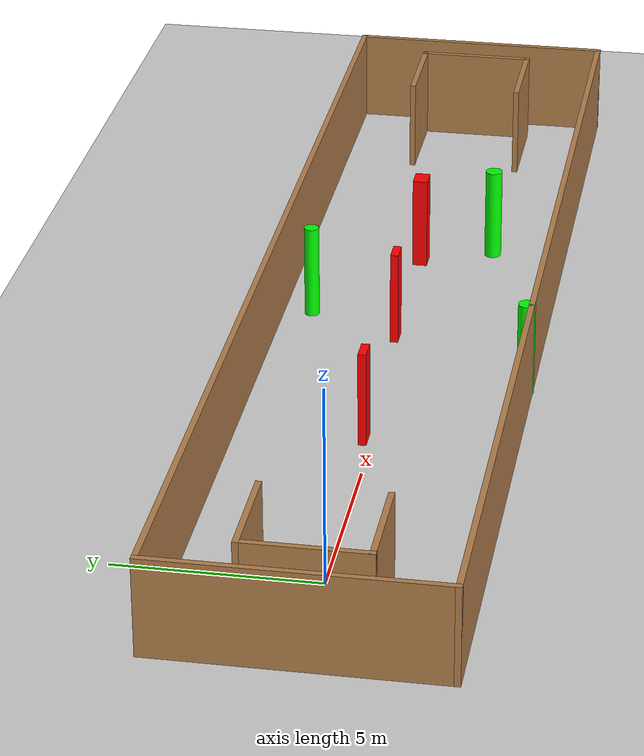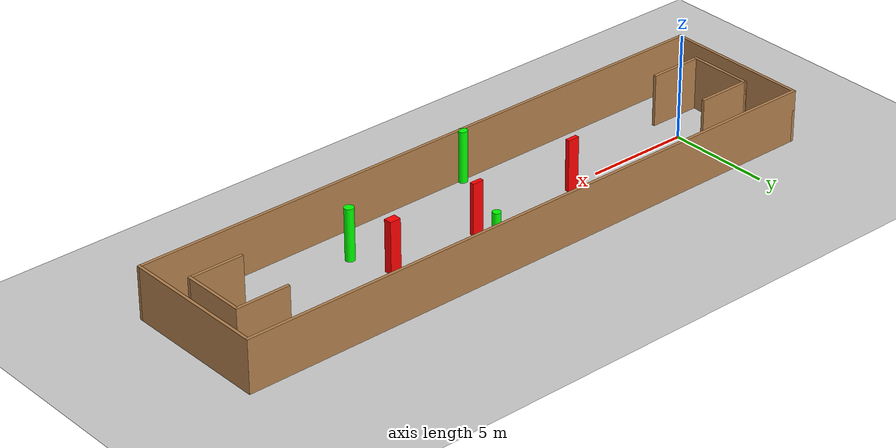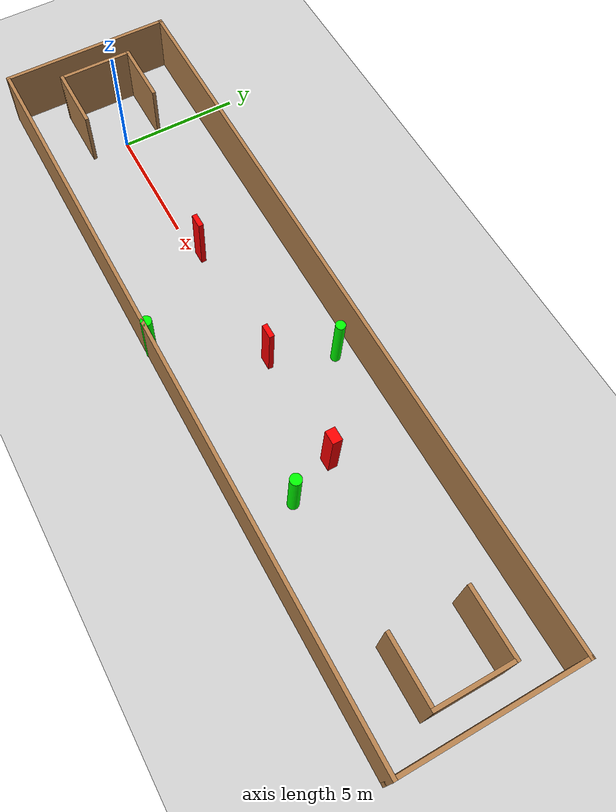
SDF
<sdf version="1.7">
 <world name="default">
  <light name="sun" type="directional">
   <pose>0 0 10 0 -0 0</pose>
   <diffuse>0.8 0.8 0.8 1</diffuse>
   <specular>0.2 0.2 0.2 1</specular>
   <attenuation>
    <range>1000</range>
    <constant>0.9</constant>
    <linear>0.01</linear>
    <quadratic>0.001</quadratic>
   </attenuation>
   <direction>-0.5 0.1 -0.9</direction>
   <spot><inner_angle>0</inner_angle><outer_angle>0</outer_angle><falloff>0</falloff></spot>
  </light>
  <model name="ground_plane">
   <static>1</static>
   <link name="link">
    <collision name="collision">
     <geometry><plane><normal>0 0 1</normal><size>100 100</size></plane></geometry>
     <surface>
      <contact><collide_bitmask>65535</collide_bitmask></contact>
      <friction><ode><mu>100</mu><mu2>50</mu2></ode></friction>
     </surface>
    </collision>
    <visual name="visual">
     <cast_shadows>0</cast_shadows>
     <geometry><plane><normal>0 0 1</normal><size>100 100</size></plane></geometry>
     <material>
      <script><uri>file://media/materials/scripts/gazebo.material</uri><name>Gazebo/Grey</name></script>
     </material>
    </visual>
   </link>
  </model>
  <gravity>0 0 -9.8</gravity>
  <magnetic_field>6e-06 2.3e-05 -4.2e-05</magnetic_field>
  <atmosphere type="adiabatic"/>
  <physics type="ode">
   <max_step_size>0.001</max_step_size>
   <real_time_factor>1</real_time_factor>
   <real_time_update_rate>1000</real_time_update_rate>
  </physics>
  <scene><ambient>0.4 0.4 0.4 1</ambient><background>0.7 0.7 0.7 1</background><shadows>1</shadows></scene>
  <spherical_coordinates>
   <surface_model>EARTH_WGS84</surface_model>
   <latitude_deg>0</latitude_deg>
   <longitude_deg>0</longitude_deg>
   <elevation>0</elevation>
   <heading_deg>0</heading_deg>
  </spherical_coordinates>
  <model name="my_base_walls">
   <link name="Wall_0">
    <collision name="Wall_0_Collision">
     <geometry><box><size>7.15 0.15 2.5</size></box></geometry>
     <pose>0 0 1.25 0 -0 0</pose>
    </collision>
    <visual name="Wall_0_Visual">
     <pose>0 0 1.25 0 -0 0</pose>
     <geometry><box><size>7.15 0.15 2.5</size></box></geometry>
     <material>
      <script><uri>file://media/materials/scripts/gazebo.material</uri><name>Gazebo/Wood</name></script>
      <ambient>1 1 1 1</ambient>
     </material>
     <meta><layer>0</layer></meta>
    </visual>
    <pose>-15 0 0 0 -0 1.5708</pose>
   </link>
   <link name="Wall_10">
    <collision name="Wall_10_Collision">
     <geometry><box><size>2.65 0.15 2.5</size></box></geometry>
     <pose>0 0 1.25 0 -0 0</pose>
    </collision>
    <visual name="Wall_10_Visual">
     <pose>0 0 1.25 0 -0 0</pose>
     <geometry><box><size>2.65 0.15 2.5</size></box></geometry>
     <material>
      <script><uri>file://media/materials/scripts/gazebo.material</uri><name>Gazebo/Wood</name></script>
      <ambient>1 1 1 1</ambient>
     </material>
     <meta><layer>0</layer></meta>
    </visual>
    <pose>-12.75 -1.5 0 0 -0 0</pose>
   </link>
   <link name="Wall_12">
    <collision name="Wall_12_Collision">
     <geometry><box><size>2.65 0.15 2.5</size></box></geometry>
     <pose>0 0 1.25 0 -0 0</pose>
    </collision>
    <visual name="Wall_12_Visual">
     <pose>0 0 1.25 0 -0 0</pose>
     <geometry><box><size>2.65 0.15 2.5</size></box></geometry>
     <material>
      <script><uri>file://media/materials/scripts/gazebo.material</uri><name>Gazebo/Wood</name></script>
      <ambient>1 1 1 1</ambient>
     </material>
     <meta><layer>0</layer></meta>
    </visual>
    <pose>-12.75 1.5 0 0 -0 0</pose>
   </link>
   <link name="Wall_14">
    <collision name="Wall_14_Collision">
     <geometry><box><size>3.15 0.15 2.5</size></box></geometry>
     <pose>0 0 1.25 0 -0 0</pose>
    </collision>
    <visual name="Wall_14_Visual">
     <pose>0 0 1.25 0 -0 0</pose>
     <geometry><box><size>3.15 0.15 2.5</size></box></geometry>
     <material>
      <script><uri>file://media/materials/scripts/gazebo.material</uri><name>Gazebo/Wood</name></script>
      <ambient>1 1 1 1</ambient>
     </material>
     <meta><layer>0</layer></meta>
    </visual>
    <pose>14 0 0 0 -0 -1.5708</pose>
   </link>
   <link name="Wall_15">
    <collision name="Wall_15_Collision">
     <geometry><box><size>2.65 0.15 2.5</size></box></geometry>
     <pose>0 0 1.25 0 -0 0</pose>
    </collision>
    <visual name="Wall_15_Visual">
     <pose>0 0 1.25 0 -0 0</pose>
     <geometry><box><size>2.65 0.15 2.5</size></box></geometry>
     <material>
      <script><uri>file://media/materials/scripts/gazebo.material</uri><name>Gazebo/Wood</name></script>
      <ambient>1 1 1 1</ambient>
     </material>
     <meta><layer>0</layer></meta>
    </visual>
    <pose>12.75 -1.5 0 0 -0 3.14159</pose>
   </link>
   <link name="Wall_17">
    <collision name="Wall_17_Collision">
     <geometry><box><size>2.65 0.15 2.5</size></box></geometry>
     <pose>0 0 1.25 0 -0 0</pose>
    </collision>
    <visual name="Wall_17_Visual">
     <pose>0 0 1.25 0 -0 0</pose>
     <geometry><box><size>2.65 0.15 2.5</size></box></geometry>
     <material>
      <script><uri>file://media/materials/scripts/gazebo.material</uri><name>Gazebo/Wood</name></script>
      <ambient>1 1 1 1</ambient>
     </material>
     <meta><layer>0</layer></meta>
    </visual>
    <pose>12.75 1.5 0 0 -0 3.14159</pose>
   </link>
   <link name="Wall_2">
    <collision name="Wall_2_Collision">
     <geometry><box><size>30.15 0.15 2.5</size></box></geometry>
     <pose>0 0 1.25 0 -0 0</pose>
    </collision>
    <visual name="Wall_2_Visual">
     <pose>0 0 1.25 0 -0 0</pose>
     <geometry><box><size>30.15 0.15 2.5</size></box></geometry>
     <material>
      <script><uri>file://media/materials/scripts/gazebo.material</uri><name>Gazebo/Wood</name></script>
      <ambient>1 1 1 1</ambient>
     </material>
     <meta><layer>0</layer></meta>
    </visual>
    <pose>-0 -3.5 0 0 -0 0</pose>
   </link>
   <link name="Wall_4">
    <collision name="Wall_4_Collision">
     <geometry><box><size>30.15 0.15 2.5</size></box></geometry>
     <pose>0 0 1.25 0 -0 0</pose>
    </collision>
    <visual name="Wall_4_Visual">
     <pose>0 0 1.25 0 -0 0</pose>
     <geometry><box><size>30.15 0.15 2.5</size></box></geometry>
     <material>
      <script><uri>file://media/materials/scripts/gazebo.material</uri><name>Gazebo/Wood</name></script>
      <ambient>1 1 1 1</ambient>
     </material>
     <meta><layer>0</layer></meta>
    </visual>
    <pose>-0 3.5 0 0 -0 0</pose>
   </link>
   <link name="Wall_6">
    <collision name="Wall_6_Collision">
     <geometry><box><size>7.15 0.15 2.5</size></box></geometry>
     <pose>0 0 1.25 0 -0 0</pose>
    </collision>
    <visual name="Wall_6_Visual">
     <pose>0 0 1.25 0 -0 0</pose>
     <geometry><box><size>7.15 0.15 2.5</size></box></geometry>
     <material>
      <script><uri>file://media/materials/scripts/gazebo.material</uri><name>Gazebo/Wood</name></script>
      <ambient>1 1 1 1</ambient>
     </material>
     <meta><layer>0</layer></meta>
    </visual>
    <pose>15 0 0 0 -0 -1.5708</pose>
   </link>
   <link name="Wall_9">
    <collision name="Wall_9_Collision">
     <geometry><box><size>3.15 0.15 2.5</size></box></geometry>
     <pose>0 0 1.25 0 -0 0</pose>
    </collision>
    <visual name="Wall_9_Visual">
     <pose>0 0 1.25 0 -0 0</pose>
     <geometry><box><size>3.15 0.15 2.5</size></box></geometry>
     <material>
      <script><uri>file://media/materials/scripts/gazebo.material</uri><name>Gazebo/Wood</name></script>
      <ambient>1 1 1 1</ambient>
     </material>
     <meta><layer>0</layer></meta>
    </visual>
    <pose>-14 0 0 0 -0 -1.5708</pose>
   </link>
   <static>1</static>
   <pose>11.5 0 0 0 -0 0</pose>
  </model>
  <model name="cylinder1">
   <static>1</static>
   <link name="link">
    <inertial>
     <mass>1</mass>
     <inertia><ixx>0.5</ixx><ixy>0</ixy><ixz>0</ixz><iyy>0.5</iyy><iyz>0</iyz><izz>1</izz></inertia>
    </inertial>
    <collision name="collision">
     <geometry><cylinder><radius>0.19280674545329157</radius><length>2.5</length></cylinder></geometry>
    </collision>
    <visual name="visual">
     <geometry><cylinder><radius>0.19280674545329157</radius><length>2.5</length></cylinder></geometry>
     <material>
      <ambient>0 1 0 1</ambient>
      <diffuse>0 1 0 1</diffuse>
      <specular>0.1 0.1 0.1 1</specular>
      <emissive>0 0 0 0</emissive>
     </material>
    </visual>
   </link>
   <pose>13.123720381449717 2.684597378500613 1.25 0 0 0</pose>
  </model>
  <model name="cylinder2">
   <static>1</static>
   <link name="link">
    <inertial>
     <mass>1</mass>
     <inertia><ixx>0.5</ixx><ixy>0</ixy><ixz>0</ixz><iyy>0.5</iyy><iyz>0</iyz><izz>1</izz></inertia>
    </inertial>
    <collision name="collision">
     <geometry><cylinder><radius>0.21905518431112875</radius><length>2.5</length></cylinder></geometry>
    </collision>
    <visual name="visual">
     <geometry><cylinder><radius>0.21905518431112875</radius><length>2.5</length></cylinder></geometry>
     <material>
      <ambient>0 1 0 1</ambient>
      <diffuse>0 1 0 1</diffuse>
      <specular>0.1 0.1 0.1 1</specular>
      <emissive>0 0 0 0</emissive>
     </material>
    </visual>
   </link>
   <pose>9.682462497312125 -3.3753528819148224 1.25 0 0 0</pose>
  </model>
  <model name="cylinder3">
   <static>1</static>
   <link name="link">
    <inertial>
     <mass>1</mass>
     <inertia><ixx>0.5</ixx><ixy>0</ixy><ixz>0</ixz><iyy>0.5</iyy><iyz>0</iyz><izz>1</izz></inertia>
    </inertial>
    <collision name="collision">
     <geometry><cylinder><radius>0.22338001453278192</radius><length>2.5</length></cylinder></geometry>
    </collision>
    <visual name="visual">
     <geometry><cylinder><radius>0.22338001453278192</radius><length>2.5</length></cylinder></geometry>
     <material>
      <ambient>0 1 0 1</ambient>
      <diffuse>0 1 0 1</diffuse>
      <specular>0.1 0.1 0.1 1</specular>
      <emissive>0 0 0 0</emissive>
     </material>
    </visual>
   </link>
   <pose>17.413269013017697 -1.5714237995847817 1.25 0 0 0</pose>
  </model>
  <model name="box1">
   <static>1</static>
   <link name="link">
    <inertial>
     <mass>1</mass>
     <inertia><ixx>0.083</ixx><ixy>0</ixy><ixz>0</ixz><iyy>0.083</iyy><iyz>0</iyz><izz>0.083</izz></inertia>
    </inertial>
    <collision name="collision">
     <geometry><box><size>0.5733099294951545 0.2057448814067927 2.5</size></box></geometry>
    </collision>
    <visual name="visual">
     <geometry><box><size>0.5733099294951545 0.2057448814067927 2.5</size></box></geometry>
     <material>
      <ambient>1 0 0 1</ambient>
      <diffuse>1 0 0 1</diffuse>
      <specular>0.1 0.1 0.1 1</specular>
      <emissive>0 0 0 0</emissive>
     </material>
    </visual>
    <sensor name="my_contact" type="contact">
     <contact><collision>box_collision</collision><topic>__default_topic__</topic></contact>
    </sensor>
   </link>
   <pose>6.639623738471554 0.22271358904685057 1.25 0 0 0</pose>
  </model>
  <model name="box2">
   <static>1</static>
   <link name="link">
    <inertial>
     <mass>1</mass>
     <inertia><ixx>0.083</ixx><ixy>0</ixy><ixz>0</ixz><iyy>0.083</iyy><iyz>0</iyz><izz>0.083</izz></inertia>
    </inertial>
    <collision name="collision">
     <geometry><box><size>0.5579656726782374 0.2057861548343472 2.5</size></box></geometry>
    </collision>
    <visual name="visual">
     <geometry><box><size>0.5579656726782374 0.2057861548343472 2.5</size></box></geometry>
     <material>
      <ambient>1 0 0 1</ambient>
      <diffuse>1 0 0 1</diffuse>
      <specular>0.1 0.1 0.1 1</specular>
      <emissive>0 0 0 0</emissive>
     </material>
    </visual>
    <sensor name="my_contact" type="contact">
     <contact><collision>box_collision</collision><topic>__default_topic__</topic></contact>
    </sensor>
   </link>
   <pose>12.1045064665577 0.29457099575363355 1.25 0 0 0</pose>
  </model>
  <model name="box3">
   <static>1</static>
   <link name="link">
    <inertial>
     <mass>1</mass>
     <inertia><ixx>0.083</ixx><ixy>0</ixy><ixz>0</ixz><iyy>0.083</iyy><iyz>0</iyz><izz>0.083</izz></inertia>
    </inertial>
    <collision name="collision">
     <geometry><box><size>0.5382446256828973 0.3893514537553571 2.5</size></box></geometry>
    </collision>
    <visual name="visual">
     <geometry><box><size>0.5382446256828973 0.3893514537553571 2.5</size></box></geometry>
     <material>
      <ambient>1 0 0 1</ambient>
      <diffuse>1 0 0 1</diffuse>
      <specular>0.1 0.1 0.1 1</specular>
      <emissive>0 0 0 0</emissive>
     </material>
    </visual>
    <sensor name="my_contact" type="contact">
     <contact><collision>box_collision</collision><topic>__default_topic__</topic></contact>
    </sensor>
   </link>
   <pose>16.670735389284758 0.3103922491374962 1.25 0 0 0</pose>
  </model>
 </world>
</sdf>
